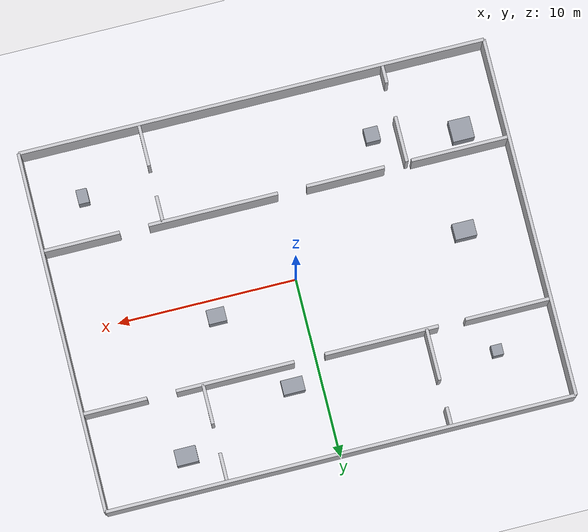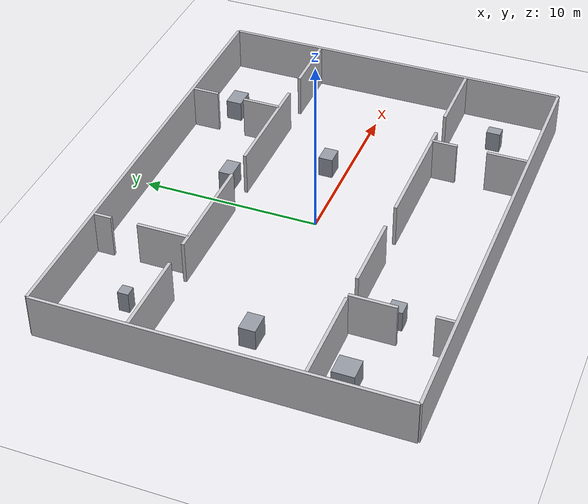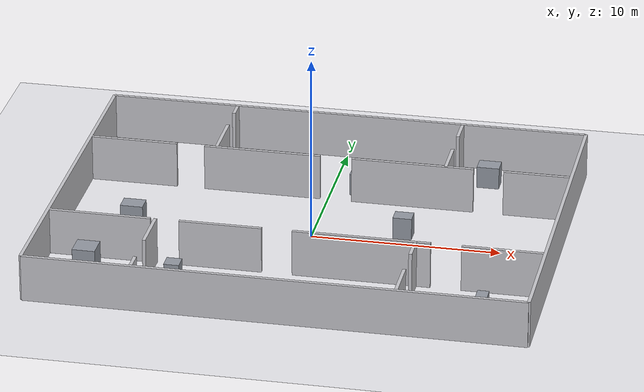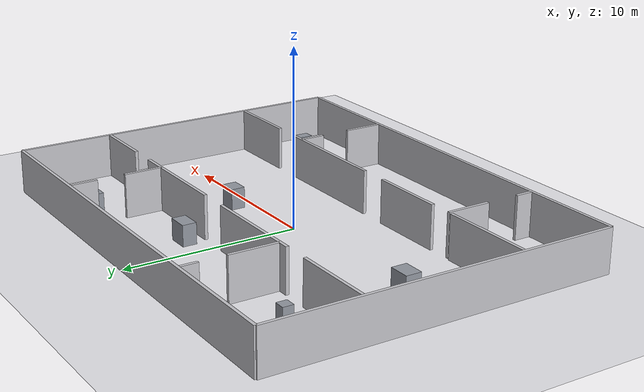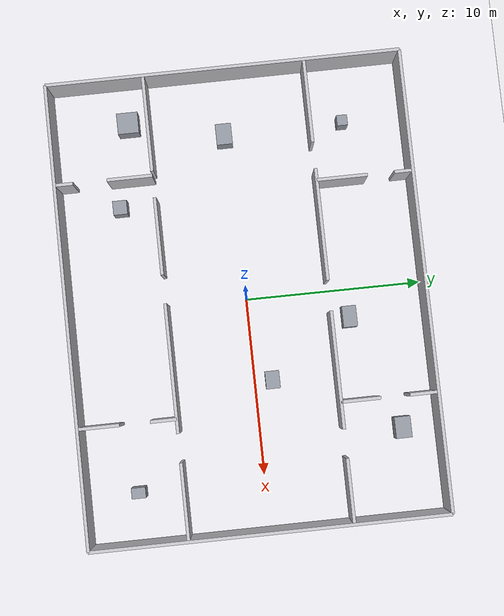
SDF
<?xml version="1.0"?>
<sdf version="1.9"><world name="new_room_world">
<plugin filename="gz-sim-physics-system" name="gz::sim::systems::Physics"/><plugin filename="gz-sim-user-commands-system" name="gz::sim::systems::UserCommands"/><plugin filename="gz-sim-scene-broadcaster-system" name="gz::sim::systems::SceneBroadcaster"/><plugin filename="gz-sim-sensors-system" name="gz::sim::systems::Sensors"><render_engine>ogre2</render_engine></plugin><plugin filename="gz-sim-imu-system" name="gz::sim::systems::Imu"/>
<physics name="new_room_realtime" type="ignored"><max_step_size>0.001</max_step_size><real_time_factor>1</real_time_factor></physics><gravity>0 0 -9.8</gravity><scene><ambient>0.85 0.85 0.87 1</ambient><background>0.68 0.68 0.71 1</background><shadows>false</shadows></scene><light name="sun" type="directional"><cast_shadows>false</cast_shadows><pose>0 0 10 0 0 0</pose><diffuse>0.95 0.95 0.95 1</diffuse><direction>-0.3 0.2 -1</direction></light>
<model name="new_room_ground"><static>true</static><link name="ground_link"><collision name="ground_collision"><geometry><plane><normal>0 0 1</normal><size>40 32</size></plane></geometry></collision><visual name="ground_visual"><geometry><plane><normal>0 0 1</normal><size>40 32</size></plane></geometry><material><ambient>0.92 0.92 0.94 1</ambient><diffuse>0.92 0.92 0.94 1</diffuse></material></visual></link></model>
<model name="mini_hospital_structure"><static>true</static><link name="structure">
<collision name="mx048_c000"><pose>0 10 1.25 0 0 0</pose><geometry><box><size>26 0.18 2.5</size></box></geometry></collision><visual name="mx048_v000"><pose>0 10 1.25 0 0 0</pose><geometry><box><size>26 0.18 2.5</size></box></geometry><material><ambient>0.78 0.78 0.80 1</ambient><diffuse>0.78 0.78 0.80 1</diffuse></material></visual>
<collision name="mx048_c001"><pose>0 -10 1.25 0 0 0</pose><geometry><box><size>26 0.18 2.5</size></box></geometry></collision><visual name="mx048_v001"><pose>0 -10 1.25 0 0 0</pose><geometry><box><size>26 0.18 2.5</size></box></geometry><material><ambient>0.78 0.78 0.80 1</ambient><diffuse>0.78 0.78 0.80 1</diffuse></material></visual>
<collision name="mx048_c002"><pose>-13 0 1.25 0 0 0</pose><geometry><box><size>0.18 20 2.5</size></box></geometry></collision><visual name="mx048_v002"><pose>-13 0 1.25 0 0 0</pose><geometry><box><size>0.18 20 2.5</size></box></geometry><material><ambient>0.78 0.78 0.80 1</ambient><diffuse>0.78 0.78 0.80 1</diffuse></material></visual>
<collision name="mx048_c003"><pose>13 0 1.25 0 0 0</pose><geometry><box><size>0.18 20 2.5</size></box></geometry></collision><visual name="mx048_v003"><pose>13 0 1.25 0 0 0</pose><geometry><box><size>0.18 20 2.5</size></box></geometry><material><ambient>0.78 0.78 0.80 1</ambient><diffuse>0.78 0.78 0.80 1</diffuse></material></visual>
<collision name="mx048_c004"><pose>-10.58 4.6 1.25 0 0 0</pose><geometry><box><size>4.66 0.18 2.5</size></box></geometry></collision><visual name="mx048_v004"><pose>-10.58 4.6 1.25 0 0 0</pose><geometry><box><size>4.66 0.18 2.5</size></box></geometry><material><ambient>0.78 0.78 0.80 1</ambient><diffuse>0.78 0.78 0.80 1</diffuse></material></visual>
<collision name="mx048_c005"><pose>-3.6 4.6 1.25 0 0 0</pose><geometry><box><size>6.3 0.18 2.5</size></box></geometry></collision><visual name="mx048_v005"><pose>-3.6 4.6 1.25 0 0 0</pose><geometry><box><size>6.3 0.18 2.5</size></box></geometry><material><ambient>0.78 0.78 0.80 1</ambient><diffuse>0.78 0.78 0.80 1</diffuse></material></visual>
<collision name="mx048_c006"><pose>4.525 4.6 1.25 0 0 0</pose><geometry><box><size>6.55 0.18 2.5</size></box></geometry></collision><visual name="mx048_v006"><pose>4.525 4.6 1.25 0 0 0</pose><geometry><box><size>6.55 0.18 2.5</size></box></geometry><material><ambient>0.78 0.78 0.80 1</ambient><diffuse>0.78 0.78 0.80 1</diffuse></material></visual>
<collision name="mx048_c007"><pose>11.155 4.6 1.25 0 0 0</pose><geometry><box><size>3.51 0.18 2.5</size></box></geometry></collision><visual name="mx048_v007"><pose>11.155 4.6 1.25 0 0 0</pose><geometry><box><size>3.51 0.18 2.5</size></box></geometry><material><ambient>0.78 0.78 0.80 1</ambient><diffuse>0.78 0.78 0.80 1</diffuse></material></visual>
<collision name="mx048_c008"><pose>-10.23 -4.5 1.25 0 0 0</pose><geometry><box><size>5.36 0.18 2.5</size></box></geometry></collision><visual name="mx048_v008"><pose>-10.23 -4.5 1.25 0 0 0</pose><geometry><box><size>5.36 0.18 2.5</size></box></geometry><material><ambient>0.78 0.78 0.80 1</ambient><diffuse>0.78 0.78 0.80 1</diffuse></material></visual>
<collision name="mx048_c009"><pose>-3.875 -4.5 1.25 0 0 0</pose><geometry><box><size>4.35 0.18 2.5</size></box></geometry></collision><visual name="mx048_v009"><pose>-3.875 -4.5 1.25 0 0 0</pose><geometry><box><size>4.35 0.18 2.5</size></box></geometry><material><ambient>0.78 0.78 0.80 1</ambient><diffuse>0.78 0.78 0.80 1</diffuse></material></visual>
<collision name="mx048_c010"><pose>3.5 -4.5 1.25 0 0 0</pose><geometry><box><size>7.2 0.18 2.5</size></box></geometry></collision><visual name="mx048_v010"><pose>3.5 -4.5 1.25 0 0 0</pose><geometry><box><size>7.2 0.18 2.5</size></box></geometry><material><ambient>0.78 0.78 0.80 1</ambient><diffuse>0.78 0.78 0.80 1</diffuse></material></visual>
<collision name="mx048_c011"><pose>10.805 -4.5 1.25 0 0 0</pose><geometry><box><size>4.21 0.18 2.5</size></box></geometry></collision><visual name="mx048_v011"><pose>10.805 -4.5 1.25 0 0 0</pose><geometry><box><size>4.21 0.18 2.5</size></box></geometry><material><ambient>0.78 0.78 0.80 1</ambient><diffuse>0.78 0.78 0.80 1</diffuse></material></visual>
<collision name="mx048_c012"><pose>-6.1 6.025 1.25 0 0 0</pose><geometry><box><size>0.18 2.85 2.5</size></box></geometry></collision><visual name="mx048_v012"><pose>-6.1 6.025 1.25 0 0 0</pose><geometry><box><size>0.18 2.85 2.5</size></box></geometry><material><ambient>0.78 0.78 0.80 1</ambient><diffuse>0.78 0.78 0.80 1</diffuse></material></visual>
<collision name="mx048_c013"><pose>-6.1 9.43 1.25 0 0 0</pose><geometry><box><size>0.18 0.96 2.5</size></box></geometry></collision><visual name="mx048_v013"><pose>-6.1 9.43 1.25 0 0 0</pose><geometry><box><size>0.18 0.96 2.5</size></box></geometry><material><ambient>0.78 0.78 0.80 1</ambient><diffuse>0.78 0.78 0.80 1</diffuse></material></visual>
<collision name="mx048_c014"><pose>6.3 5.7 1.25 0 0 0</pose><geometry><box><size>0.18 2.2 2.5</size></box></geometry></collision><visual name="mx048_v014"><pose>6.3 5.7 1.25 0 0 0</pose><geometry><box><size>0.18 2.2 2.5</size></box></geometry><material><ambient>0.78 0.78 0.80 1</ambient><diffuse>0.78 0.78 0.80 1</diffuse></material></visual>
<collision name="mx048_c015"><pose>6.3 9.155 1.25 0 0 0</pose><geometry><box><size>0.18 1.51 2.5</size></box></geometry></collision><visual name="mx048_v015"><pose>6.3 9.155 1.25 0 0 0</pose><geometry><box><size>0.18 1.51 2.5</size></box></geometry><material><ambient>0.78 0.78 0.80 1</ambient><diffuse>0.78 0.78 0.80 1</diffuse></material></visual>
<collision name="mx048_c016"><pose>-7.3 -9.43 1.25 0 0 0</pose><geometry><box><size>0.18 0.96 2.5</size></box></geometry></collision><visual name="mx048_v016"><pose>-7.3 -9.43 1.25 0 0 0</pose><geometry><box><size>0.18 0.96 2.5</size></box></geometry><material><ambient>0.78 0.78 0.80 1</ambient><diffuse>0.78 0.78 0.80 1</diffuse></material></visual>
<collision name="mx048_c017"><pose>-7.3 -5.775 1.25 0 0 0</pose><geometry><box><size>0.18 2.55 2.5</size></box></geometry></collision><visual name="mx048_v017"><pose>-7.3 -5.775 1.25 0 0 0</pose><geometry><box><size>0.18 2.55 2.5</size></box></geometry><material><ambient>0.78 0.78 0.80 1</ambient><diffuse>0.78 0.78 0.80 1</diffuse></material></visual>
<collision name="mx048_c018"><pose>6.3 -8.78 1.25 0 0 0</pose><geometry><box><size>0.18 2.26 2.5</size></box></geometry></collision><visual name="mx048_v018"><pose>6.3 -8.78 1.25 0 0 0</pose><geometry><box><size>0.18 2.26 2.5</size></box></geometry><material><ambient>0.78 0.78 0.80 1</ambient><diffuse>0.78 0.78 0.80 1</diffuse></material></visual>
<collision name="mx048_c019"><pose>6.3 -5.225 1.25 0 0 0</pose><geometry><box><size>0.18 1.45 2.5</size></box></geometry></collision><visual name="mx048_v019"><pose>6.3 -5.225 1.25 0 0 0</pose><geometry><box><size>0.18 1.45 2.5</size></box></geometry><material><ambient>0.78 0.78 0.80 1</ambient><diffuse>0.78 0.78 0.80 1</diffuse></material></visual>
<collision name="mx048_c020"><pose>-9.6 6.5 0.6 0 0 0</pose><geometry><box><size>0.6 0.6 1.2</size></box></geometry></collision><visual name="mx048_v020"><pose>-9.6 6.5 0.6 0 0 0</pose><geometry><box><size>0.6 0.6 1.2</size></box></geometry><material><ambient>0.58 0.60 0.64 1</ambient><diffuse>0.58 0.60 0.64 1</diffuse></material></visual>
<collision name="mx048_c021"><pose>1.6 5.7 0.6 0 0 0</pose><geometry><box><size>1.2 0.8 1.2</size></box></geometry></collision><visual name="mx048_v021"><pose>1.6 5.7 0.6 0 0 0</pose><geometry><box><size>1.2 0.8 1.2</size></box></geometry><material><ambient>0.58 0.60 0.64 1</ambient><diffuse>0.58 0.60 0.64 1</diffuse></material></visual>
<collision name="mx048_c022"><pose>8.1 8 0.6 0 0 0</pose><geometry><box><size>1.2 0.9 1.2</size></box></geometry></collision><visual name="mx048_v022"><pose>8.1 8 0.6 0 0 0</pose><geometry><box><size>1.2 0.9 1.2</size></box></geometry><material><ambient>0.58 0.60 0.64 1</ambient><diffuse>0.58 0.60 0.64 1</diffuse></material></visual>
<collision name="mx048_c023"><pose>-10.7 -5.7 0.6 0 0 0</pose><geometry><box><size>1.2 1.2 1.2</size></box></geometry></collision><visual name="mx048_v023"><pose>-10.7 -5.7 0.6 0 0 0</pose><geometry><box><size>1.2 1.2 1.2</size></box></geometry><material><ambient>0.58 0.60 0.64 1</ambient><diffuse>0.58 0.60 0.64 1</diffuse></material></visual>
<collision name="mx048_c024"><pose>-5.9 -6.6 0.6 0 0 0</pose><geometry><box><size>0.8 0.8 1.2</size></box></geometry></collision><visual name="mx048_v024"><pose>-5.9 -6.6 0.6 0 0 0</pose><geometry><box><size>0.8 0.8 1.2</size></box></geometry><material><ambient>0.58 0.60 0.64 1</ambient><diffuse>0.58 0.60 0.64 1</diffuse></material></visual>
<collision name="mx048_c025"><pose>10.2 -7.1 0.6 0 0 0</pose><geometry><box><size>0.6 0.8 1.2</size></box></geometry></collision><visual name="mx048_v025"><pose>10.2 -7.1 0.6 0 0 0</pose><geometry><box><size>0.6 0.8 1.2</size></box></geometry><material><ambient>0.58 0.60 0.64 1</ambient><diffuse>0.58 0.60 0.64 1</diffuse></material></visual>
<collision name="mx048_c026"><pose>-9.5 -0.3 0.6 0 0 0</pose><geometry><box><size>1.2 0.9 1.2</size></box></geometry></collision><visual name="mx048_v026"><pose>-9.5 -0.3 0.6 0 0 0</pose><geometry><box><size>1.2 0.9 1.2</size></box></geometry><material><ambient>0.58 0.60 0.64 1</ambient><diffuse>0.58 0.60 0.64 1</diffuse></material></visual>
<collision name="mx048_c027"><pose>4.7 1 0.6 0 0 0</pose><geometry><box><size>1 0.8 1.2</size></box></geometry></collision><visual name="mx048_v027"><pose>4.7 1 0.6 0 0 0</pose><geometry><box><size>1 0.8 1.2</size></box></geometry><material><ambient>0.58 0.60 0.64 1</ambient><diffuse>0.58 0.60 0.64 1</diffuse></material></visual>
</link></model></world></sdf>
